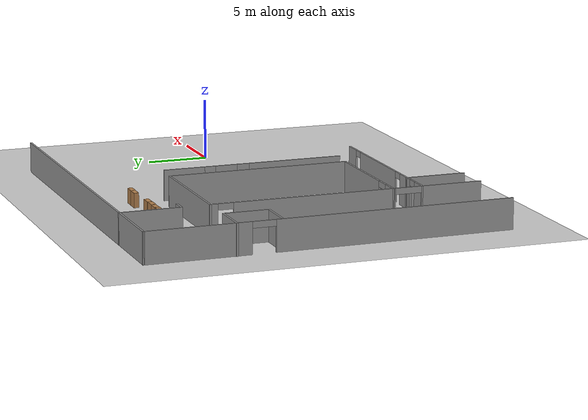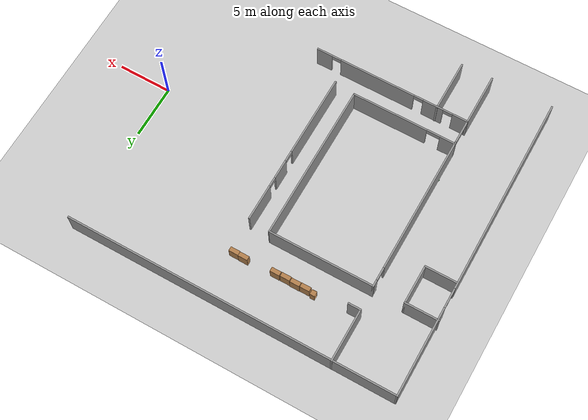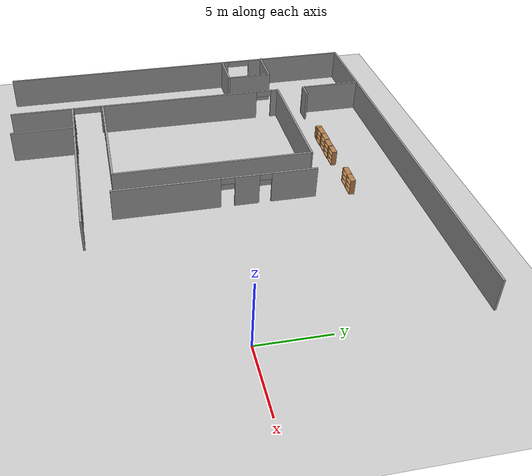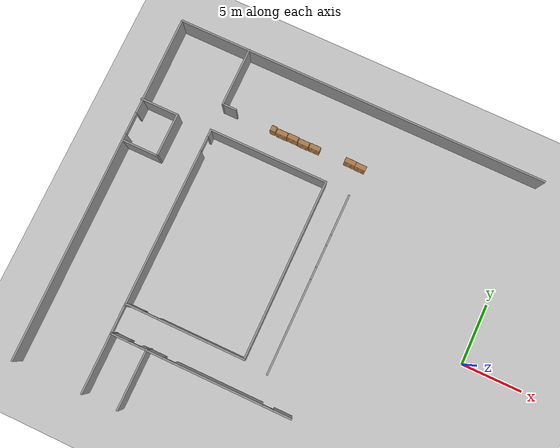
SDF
<sdf version="1.4">
 <world name="default">
  <model name="ground_plane">
   <static>1</static>
   <link name="link">
    <collision name="collision">
     <geometry><plane><normal>0 0 1</normal><size>100 100</size></plane></geometry>
    </collision>
    <visual name="visual">
     <cast_shadows>0</cast_shadows>
     <geometry><plane><normal>0 0 1</normal><size>100 100</size></plane></geometry>
     <material>
      <script><uri>file://media/materials/scripts/gazebo.material</uri><name>Gazebo/Grey</name></script>
     </material>
    </visual>
    <velocity_decay><linear>0</linear><angular>0</angular></velocity_decay>
   </link>
  </model>
  <model name="Shannon">
   <pose>-0.0406 0.68299 0 0 -0 0</pose>
   <link name="Wall_108">
    <collision name="Wall_108_Collision">
     <geometry><box><size>3.75 0.15 2.5</size></box></geometry>
     <pose>0 0 1.25 0 -0 0</pose>
    </collision>
    <visual name="Wall_108_Visual">
     <pose>0 0 1.25 0 -0 0</pose>
     <geometry><box><size>3.75 0.15 2.5</size></box></geometry>
     <material>
      <script><uri>file://media/materials/scripts/gazebo.material</uri><name>Gazebo/Grey</name></script>
      <ambient>1 1 1 1</ambient>
     </material>
    </visual>
    <pose>-28.0998 5.68065 0 0 -0 -1.5708</pose>
    <velocity_decay><linear>0</linear><angular>0</angular></velocity_decay>
   </link>
   <link name="Wall_109">
    <collision name="Wall_109_Collision">
     <geometry><box><size>3 0.15 2.5</size></box></geometry>
     <pose>0 0 1.25 0 -0 0</pose>
    </collision>
    <visual name="Wall_109_Visual">
     <pose>0 0 1.25 0 -0 0</pose>
     <geometry><box><size>3 0.15 2.5</size></box></geometry>
     <material>
      <script><uri>file://media/materials/scripts/gazebo.material</uri><name>Gazebo/Grey</name></script>
      <ambient>1 1 1 1</ambient>
     </material>
    </visual>
    <pose>-29.5248 3.88065 0 0 -0 3.14159</pose>
    <velocity_decay><linear>0</linear><angular>0</angular></velocity_decay>
   </link>
   <link name="Wall_115">
    <pose>-25.1881 -8.57974 0 0 -0 1.57264</pose>
    <visual name="Wall_115_Visual_0">
     <pose>-1.20863 0 1.25 0 -0 0</pose>
     <geometry><box><size>0.183947 0.15 2.5</size></box></geometry>
     <material>
      <script><uri>file://media/materials/scripts/gazebo.material</uri><name>Gazebo/Grey</name></script>
      <ambient>1 1 1 1</ambient>
     </material>
    </visual>
    <collision name="Wall_115_Collision_0">
     <geometry><box><size>0.183947 0.15 2.5</size></box></geometry>
     <pose>-1.20863 0 1.25 0 -0 0</pose>
    </collision>
    <visual name="Wall_115_Visual_1">
     <pose>1.16989 0 1.25 0 -0 0</pose>
     <geometry><box><size>0.261435 0.15 2.5</size></box></geometry>
     <material>
      <script><uri>file://media/materials/scripts/gazebo.material</uri><name>Gazebo/Grey</name></script>
      <ambient>1 1 1 1</ambient>
     </material>
    </visual>
    <collision name="Wall_115_Collision_1">
     <geometry><box><size>0.261435 0.15 2.5</size></box></geometry>
     <pose>1.16989 0 1.25 0 -0 0</pose>
    </collision>
    <visual name="Wall_115_Visual_2">
     <pose>-0.038744 0 2.25 0 -0 0</pose>
     <geometry><box><size>2.15582 0.15 0.5</size></box></geometry>
     <material>
      <script><uri>file://media/materials/scripts/gazebo.material</uri><name>Gazebo/Grey</name></script>
      <ambient>1 1 1 1</ambient>
     </material>
    </visual>
    <collision name="Wall_115_Collision_2">
     <geometry><box><size>2.15582 0.15 0.5</size></box></geometry>
     <pose>-0.038744 0 2.25 0 -0 0</pose>
    </collision>
    <velocity_decay><linear>0</linear><angular>0</angular></velocity_decay>
   </link>
   <link name="Wall_118">
    <collision name="Wall_118_Collision">
     <geometry><box><size>31.25 0.15 2.5</size></box></geometry>
     <pose>0 0 1.25 0 -0 0</pose>
    </collision>
    <visual name="Wall_118_Visual">
     <pose>0 0 1.25 0 -0 0</pose>
     <geometry><box><size>31.25 0.15 2.5</size></box></geometry>
     <material>
      <script><uri>file://media/materials/scripts/gazebo.material</uri><name>Gazebo/Grey</name></script>
      <ambient>1 1 1 1</ambient>
     </material>
    </visual>
    <pose>-15.6004 14.61 0 0 -0 0</pose>
    <velocity_decay><linear>0</linear><angular>0</angular></velocity_decay>
   </link>
   <link name="Wall_14">
    <pose>-31.0675 -0.031809 0 0 -0 1.57646</pose>
    <visual name="Wall_14_Visual_0">
     <pose>-5.13073 0 1.25 0 -0 0</pose>
     <geometry><box><size>19.1731 0.15 2.5</size></box></geometry>
     <material>
      <script><uri>file://media/materials/scripts/gazebo.material</uri><name>Gazebo/Grey</name></script>
      <ambient>1 1 1 1</ambient>
     </material>
    </visual>
    <collision name="Wall_14_Collision_0">
     <geometry><box><size>19.1731 0.15 2.5</size></box></geometry>
     <pose>-5.13073 0 1.25 0 -0 0</pose>
    </collision>
    <visual name="Wall_14_Visual_1">
     <pose>10.5202 0 1.25 0 -0 0</pose>
     <geometry><box><size>8.3942 0.15 2.5</size></box></geometry>
     <material>
      <script><uri>file://media/materials/scripts/gazebo.material</uri><name>Gazebo/Grey</name></script>
      <ambient>1 1 1 1</ambient>
     </material>
    </visual>
    <collision name="Wall_14_Collision_1">
     <geometry><box><size>8.3942 0.15 2.5</size></box></geometry>
     <pose>10.5202 0 1.25 0 -0 0</pose>
    </collision>
    <visual name="Wall_14_Visual_2">
     <pose>5.38944 0 2.25 0 -0 0</pose>
     <geometry><box><size>1.86726 0.15 0.5</size></box></geometry>
     <material>
      <script><uri>file://media/materials/scripts/gazebo.material</uri><name>Gazebo/Grey</name></script>
      <ambient>1 1 1 1</ambient>
     </material>
    </visual>
    <collision name="Wall_14_Collision_2">
     <geometry><box><size>1.86726 0.15 0.5</size></box></geometry>
     <pose>5.38944 0 2.25 0 -0 0</pose>
    </collision>
    <velocity_decay><linear>0</linear><angular>0</angular></velocity_decay>
   </link>
   <link name="Wall_16">
    <collision name="Wall_16_Collision">
     <geometry><box><size>10 0.15 2.5</size></box></geometry>
     <pose>0 0 1.25 0 -0 0</pose>
    </collision>
    <visual name="Wall_16_Visual">
     <pose>0 0 1.25 0 -0 0</pose>
     <geometry><box><size>10 0.15 2.5</size></box></geometry>
     <material>
      <script><uri>file://media/materials/scripts/gazebo.material</uri><name>Gazebo/Grey</name></script>
      <ambient>1 1 1 1</ambient>
     </material>
    </visual>
    <pose>-20.2786 7.49586 0 0 -0 0</pose>
    <velocity_decay><linear>0</linear><angular>0</angular></velocity_decay>
   </link>
   <link name="Wall_17">
    <collision name="Wall_17_Collision">
     <geometry><box><size>15 0.15 2.5</size></box></geometry>
     <pose>0 0 1.25 0 -0 0</pose>
    </collision>
    <visual name="Wall_17_Visual">
     <pose>0 0 1.25 0 -0 0</pose>
     <geometry><box><size>15 0.15 2.5</size></box></geometry>
     <material>
      <script><uri>file://media/materials/scripts/gazebo.material</uri><name>Gazebo/Grey</name></script>
      <ambient>1 1 1 1</ambient>
     </material>
    </visual>
    <pose>-15.3403 0.07086 0 0 -0 -1.569</pose>
    <velocity_decay><linear>0</linear><angular>0</angular></velocity_decay>
   </link>
   <link name="Wall_18">
    <pose>-20.2653 -7.35414 0 0 -0 3.14159</pose>
    <visual name="Wall_18_Visual_0">
     <pose>-1.3866 0 1.25 0 -0 0</pose>
     <geometry><box><size>7.2268 0.15 2.5</size></box></geometry>
     <material>
      <script><uri>file://media/materials/scripts/gazebo.material</uri><name>Gazebo/Grey</name></script>
      <ambient>1 1 1 1</ambient>
     </material>
    </visual>
    <collision name="Wall_18_Collision_0">
     <geometry><box><size>7.2268 0.15 2.5</size></box></geometry>
     <pose>-1.3866 0 1.25 0 -0 0</pose>
    </collision>
    <visual name="Wall_18_Visual_1">
     <pose>4.24845 0 1.25 0 -0 0</pose>
     <geometry><box><size>1.50311 0.15 2.5</size></box></geometry>
     <material>
      <script><uri>file://media/materials/scripts/gazebo.material</uri><name>Gazebo/Grey</name></script>
      <ambient>1 1 1 1</ambient>
     </material>
    </visual>
    <collision name="Wall_18_Collision_1">
     <geometry><box><size>1.50311 0.15 2.5</size></box></geometry>
     <pose>4.24845 0 1.25 0 -0 0</pose>
    </collision>
    <visual name="Wall_18_Visual_2">
     <pose>2.86185 0 2.25 0 -0 0</pose>
     <geometry><box><size>1.27009 0.15 0.5</size></box></geometry>
     <material>
      <script><uri>file://media/materials/scripts/gazebo.material</uri><name>Gazebo/Grey</name></script>
      <ambient>1 1 1 1</ambient>
     </material>
    </visual>
    <collision name="Wall_18_Collision_2">
     <geometry><box><size>1.27009 0.15 0.5</size></box></geometry>
     <pose>2.86185 0 2.25 0 -0 0</pose>
    </collision>
    <velocity_decay><linear>0</linear><angular>0</angular></velocity_decay>
   </link>
   <link name="Wall_20">
    <pose>-25.1903 0.07086 0 0 -0 1.5708</pose>
    <visual name="Wall_20_Visual_0">
     <pose>-0.95824 0 1.25 0 -0 0</pose>
     <geometry><box><size>13.0835 0.15 2.5</size></box></geometry>
     <material>
      <script><uri>file://media/materials/scripts/gazebo.material</uri><name>Gazebo/Grey</name></script>
      <ambient>1 1 1 1</ambient>
     </material>
    </visual>
    <collision name="Wall_20_Collision_0">
     <geometry><box><size>13.0835 0.15 2.5</size></box></geometry>
     <pose>-0.95824 0 1.25 0 -0 0</pose>
    </collision>
    <visual name="Wall_20_Visual_1">
     <pose>7.16524 0 1.25 0 -0 0</pose>
     <geometry><box><size>0.669521 0.15 2.5</size></box></geometry>
     <material>
      <script><uri>file://media/materials/scripts/gazebo.material</uri><name>Gazebo/Grey</name></script>
      <ambient>1 1 1 1</ambient>
     </material>
    </visual>
    <collision name="Wall_20_Collision_1">
     <geometry><box><size>0.669521 0.15 2.5</size></box></geometry>
     <pose>7.16524 0 1.25 0 -0 0</pose>
    </collision>
    <visual name="Wall_20_Visual_2">
     <pose>6.207 0 2.25 0 -0 0</pose>
     <geometry><box><size>1.24696 0.15 0.5</size></box></geometry>
     <material>
      <script><uri>file://media/materials/scripts/gazebo.material</uri><name>Gazebo/Grey</name></script>
      <ambient>1 1 1 1</ambient>
     </material>
    </visual>
    <collision name="Wall_20_Collision_2">
     <geometry><box><size>1.24696 0.15 0.5</size></box></geometry>
     <pose>6.207 0 2.25 0 -0 0</pose>
    </collision>
    <velocity_decay><linear>0</linear><angular>0</angular></velocity_decay>
   </link>
   <link name="Wall_22">
    <collision name="Wall_22_Collision">
     <geometry><box><size>5 0.15 2.5</size></box></geometry>
     <pose>0 0 1.25 0 -0 0</pose>
    </collision>
    <visual name="Wall_22_Visual">
     <pose>0 0 1.25 0 -0 0</pose>
     <geometry><box><size>5 0.15 2.5</size></box></geometry>
     <material>
      <script><uri>file://media/materials/scripts/gazebo.material</uri><name>Gazebo/Grey</name></script>
      <ambient>1 1 1 1</ambient>
     </material>
    </visual>
    <pose>-25.1858 -12.2303 0 0 -0 1.5708</pose>
    <velocity_decay><linear>0</linear><angular>0</angular></velocity_decay>
   </link>
   <link name="Wall_23">
    <pose>-17.7608 -9.80534 0 0 -0 0</pose>
    <visual name="Wall_23_Visual_0">
     <pose>-6.73914 0 1.25 0 -0 0</pose>
     <geometry><box><size>1.52171 0.15 2.5</size></box></geometry>
     <material>
      <script><uri>file://media/materials/scripts/gazebo.material</uri><name>Gazebo/Grey</name></script>
      <ambient>1 1 1 1</ambient>
     </material>
    </visual>
    <collision name="Wall_23_Collision_0">
     <geometry><box><size>1.52171 0.15 2.5</size></box></geometry>
     <pose>-6.73914 0 1.25 0 -0 0</pose>
    </collision>
    <visual name="Wall_23_Visual_1">
     <pose>-4.09419 0 1.25 0 -0 0</pose>
     <geometry><box><size>1.96819 0.15 2.5</size></box></geometry>
     <material>
      <script><uri>file://media/materials/scripts/gazebo.material</uri><name>Gazebo/Grey</name></script>
      <ambient>1 1 1 1</ambient>
     </material>
    </visual>
    <collision name="Wall_23_Collision_1">
     <geometry><box><size>1.96819 0.15 2.5</size></box></geometry>
     <pose>-4.09419 0 1.25 0 -0 0</pose>
    </collision>
    <visual name="Wall_23_Visual_2">
     <pose>1.43402 0 1.25 0 -0 0</pose>
     <geometry><box><size>7.28824 0.15 2.5</size></box></geometry>
     <material>
      <script><uri>file://media/materials/scripts/gazebo.material</uri><name>Gazebo/Grey</name></script>
      <ambient>1 1 1 1</ambient>
     </material>
    </visual>
    <collision name="Wall_23_Collision_2">
     <geometry><box><size>7.28824 0.15 2.5</size></box></geometry>
     <pose>1.43402 0 1.25 0 -0 0</pose>
    </collision>
    <visual name="Wall_23_Visual_3">
     <pose>6.73907 0 1.25 0 -0 0</pose>
     <geometry><box><size>1.52186 0.15 2.5</size></box></geometry>
     <material>
      <script><uri>file://media/materials/scripts/gazebo.material</uri><name>Gazebo/Grey</name></script>
      <ambient>1 1 1 1</ambient>
     </material>
    </visual>
    <collision name="Wall_23_Collision_3">
     <geometry><box><size>1.52186 0.15 2.5</size></box></geometry>
     <pose>6.73907 0 1.25 0 -0 0</pose>
    </collision>
    <visual name="Wall_23_Visual_4">
     <pose>-5.52829 0 2.25 0 -0 0</pose>
     <geometry><box><size>0.9 0.15 0.5</size></box></geometry>
     <material>
      <script><uri>file://media/materials/scripts/gazebo.material</uri><name>Gazebo/Grey</name></script>
      <ambient>1 1 1 1</ambient>
     </material>
    </visual>
    <collision name="Wall_23_Collision_4">
     <geometry><box><size>0.9 0.15 0.5</size></box></geometry>
     <pose>-5.52829 0 2.25 0 -0 0</pose>
    </collision>
    <visual name="Wall_23_Visual_5">
     <pose>-2.6601 0 2.25 0 -0 0</pose>
     <geometry><box><size>0.9 0.15 0.5</size></box></geometry>
     <material>
      <script><uri>file://media/materials/scripts/gazebo.material</uri><name>Gazebo/Grey</name></script>
      <ambient>1 1 1 1</ambient>
     </material>
    </visual>
    <collision name="Wall_23_Collision_5">
     <geometry><box><size>0.9 0.15 0.5</size></box></geometry>
     <pose>-2.6601 0 2.25 0 -0 0</pose>
    </collision>
    <visual name="Wall_23_Visual_6">
     <pose>5.52814 0 2.25 0 -0 0</pose>
     <geometry><box><size>0.9 0.15 0.5</size></box></geometry>
     <material>
      <script><uri>file://media/materials/scripts/gazebo.material</uri><name>Gazebo/Grey</name></script>
      <ambient>1 1 1 1</ambient>
     </material>
    </visual>
    <collision name="Wall_23_Collision_6">
     <geometry><box><size>0.9 0.15 0.5</size></box></geometry>
     <pose>5.52814 0 2.25 0 -0 0</pose>
    </collision>
    <velocity_decay><linear>0</linear><angular>0</angular></velocity_decay>
   </link>
   <link name="Wall_32">
    <collision name="Wall_32_Collision">
     <geometry><box><size>5 0.15 2.5</size></box></geometry>
     <pose>0 0 1.25 0 -0 0</pose>
    </collision>
    <visual name="Wall_32_Visual">
     <pose>0 0 1.25 0 -0 0</pose>
     <geometry><box><size>5 0.15 2.5</size></box></geometry>
     <material>
      <script><uri>file://media/materials/scripts/gazebo.material</uri><name>Gazebo/Grey</name></script>
      <ambient>1 1 1 1</ambient>
     </material>
    </visual>
    <pose>-22.2482 -12.1767 0 0 -0 -1.5708</pose>
    <velocity_decay><linear>0</linear><angular>0</angular></velocity_decay>
   </link>
   <link name="Wall_45">
    <pose>-13.2967 -0.175656 0 0 -0 -1.5708</pose>
    <visual name="Wall_45_Visual_0">
     <pose>-5.79079 0 1.25 0 -0 0</pose>
     <geometry><box><size>3.41842 0.15 2.5</size></box></geometry>
     <material>
      <script><uri>file://media/materials/scripts/gazebo.material</uri><name>Gazebo/Grey</name></script>
      <ambient>1 1 1 1</ambient>
     </material>
    </visual>
    <collision name="Wall_45_Collision_0">
     <geometry><box><size>3.41842 0.15 2.5</size></box></geometry>
     <pose>-5.79079 0 1.25 0 -0 0</pose>
    </collision>
    <visual name="Wall_45_Visual_1">
     <pose>-2.27266 0 1.25 0 -0 0</pose>
     <geometry><box><size>1.81785 0.15 2.5</size></box></geometry>
     <material>
      <script><uri>file://media/materials/scripts/gazebo.material</uri><name>Gazebo/Grey</name></script>
      <ambient>1 1 1 1</ambient>
     </material>
    </visual>
    <collision name="Wall_45_Collision_1">
     <geometry><box><size>1.81785 0.15 2.5</size></box></geometry>
     <pose>-2.27266 0 1.25 0 -0 0</pose>
    </collision>
    <visual name="Wall_45_Visual_2">
     <pose>3.57596 0 1.25 0 -0 0</pose>
     <geometry><box><size>7.84808 0.15 2.5</size></box></geometry>
     <material>
      <script><uri>file://media/materials/scripts/gazebo.material</uri><name>Gazebo/Grey</name></script>
      <ambient>1 1 1 1</ambient>
     </material>
    </visual>
    <collision name="Wall_45_Collision_2">
     <geometry><box><size>7.84808 0.15 2.5</size></box></geometry>
     <pose>3.57596 0 1.25 0 -0 0</pose>
    </collision>
    <visual name="Wall_45_Visual_3">
     <pose>-3.63158 0 2.25 0 -0 0</pose>
     <geometry><box><size>0.9 0.15 0.5</size></box></geometry>
     <material>
      <script><uri>file://media/materials/scripts/gazebo.material</uri><name>Gazebo/Grey</name></script>
      <ambient>1 1 1 1</ambient>
     </material>
    </visual>
    <collision name="Wall_45_Collision_3">
     <geometry><box><size>0.9 0.15 0.5</size></box></geometry>
     <pose>-3.63158 0 2.25 0 -0 0</pose>
    </collision>
    <visual name="Wall_45_Visual_4">
     <pose>-0.855907 0 2.25 0 -0 0</pose>
     <geometry><box><size>1.01565 0.15 0.5</size></box></geometry>
     <material>
      <script><uri>file://media/materials/scripts/gazebo.material</uri><name>Gazebo/Grey</name></script>
      <ambient>1 1 1 1</ambient>
     </material>
    </visual>
    <collision name="Wall_45_Collision_4">
     <geometry><box><size>1.01565 0.15 0.5</size></box></geometry>
     <pose>-0.855907 0 2.25 0 -0 0</pose>
    </collision>
    <velocity_decay><linear>0</linear><angular>0</angular></velocity_decay>
   </link>
   <link name="Wall_73">
    <collision name="Wall_73_Collision">
     <geometry><box><size>3.25 0.15 2.5</size></box></geometry>
     <pose>0 0 1.25 0 -0 0</pose>
    </collision>
    <visual name="Wall_73_Visual">
     <pose>0 0 1.25 0 -0 0</pose>
     <geometry><box><size>3.25 0.15 2.5</size></box></geometry>
     <material>
      <script><uri>file://media/materials/scripts/gazebo.material</uri><name>Gazebo/Grey</name></script>
      <ambient>1 1 1 1</ambient>
     </material>
    </visual>
    <pose>-29.6498 7.48065 0 0 -0 0</pose>
    <velocity_decay><linear>0</linear><angular>0</angular></velocity_decay>
   </link>
   <link name="Wall_75">
    <collision name="Wall_75_Collision">
     <geometry><box><size>5 0.15 2.5</size></box></geometry>
     <pose>0 0 1.25 0 -0 0</pose>
    </collision>
    <visual name="Wall_75_Visual">
     <pose>0 0 1.25 0 -0 0</pose>
     <geometry><box><size>5 0.15 2.5</size></box></geometry>
     <material>
      <script><uri>file://media/materials/scripts/gazebo.material</uri><name>Gazebo/Grey</name></script>
      <ambient>1 1 1 1</ambient>
     </material>
    </visual>
    <pose>-25.2552 12.203 0 0 -0 -1.5708</pose>
    <velocity_decay><linear>0</linear><angular>0</angular></velocity_decay>
   </link>
   <link name="Wall_76">
    <collision name="Wall_76_Collision">
     <geometry><box><size>1.25 0.15 2.5</size></box></geometry>
     <pose>0 0 1.25 0 -0 0</pose>
    </collision>
    <visual name="Wall_76_Visual">
     <pose>0 0 1.25 0 -0 0</pose>
     <geometry><box><size>1.25 0.15 2.5</size></box></geometry>
     <material>
      <script><uri>file://media/materials/scripts/gazebo.material</uri><name>Gazebo/Grey</name></script>
      <ambient>1 1 1 1</ambient>
     </material>
    </visual>
    <pose>-24.7052 9.77801 0 0 -0 0</pose>
    <velocity_decay><linear>0</linear><angular>0</angular></velocity_decay>
   </link>
   <static>1</static>
  </model>
  <model name="cabinet">
   <static>1</static>
   <link name="cabinet_bottom_plate">
    <inertial>
     <pose>0 0 -1 0 -0 0</pose>
     <inertia><ixx>2.05</ixx><ixy>0</ixy><ixz>0</ixz><iyy>2.05</iyy><iyz>0</iyz><izz>2.05</izz></inertia>
     <mass>25</mass>
    </inertial>
    <collision name="cabinet_bottom_plate_geom">
     <pose>0 0 0.01 0 -0 0</pose>
     <geometry><box><size>0.45 0.45 0.02</size></box></geometry>
    </collision>
    <visual name="cabinet_bottom_plate_geom_visual">
     <pose>0 0 0.01 0 -0 0</pose>
     <geometry><box><size>0.45 0.45 0.02</size></box></geometry>
     <material>
      <script><uri>file://media/materials/scripts/gazebo.material</uri><name>Gazebo/Wood</name></script>
     </material>
    </visual>
    <collision name="cabinet_bottom_plate_geom_cabinet_back_plate">
     <pose>0.235 0 0.51 0 -0 0</pose>
     <geometry><box><size>0.02 0.45 1.02</size></box></geometry>
    </collision>
    <visual name="cabinet_bottom_plate_geom_cabinet_back_plate_visual">
     <pose>0.235 0 0.51 0 -0 0</pose>
     <geometry><box><size>0.02 0.45 1.02</size></box></geometry>
     <material>
      <script><uri>file://media/materials/scripts/gazebo.material</uri><name>Gazebo/Wood</name></script>
     </material>
    </visual>
    <collision name="cabinet_bottom_plate_geom_cabinet_left_plate">
     <pose>0 0.235 0.51 0 -0 0</pose>
     <geometry><box><size>0.45 0.02 1.02</size></box></geometry>
    </collision>
    <visual name="cabinet_bottom_plate_geom_cabinet_left_plate_visual">
     <pose>0 0.235 0.51 0 -0 0</pose>
     <geometry><box><size>0.45 0.02 1.02</size></box></geometry>
     <material>
      <script><uri>file://media/materials/scripts/gazebo.material</uri><name>Gazebo/Wood</name></script>
     </material>
    </visual>
    <collision name="cabinet_bottom_plate_geom_cabinet_middle_plate">
     <pose>0 0 0.51 0 -0 0</pose>
     <geometry><box><size>0.45 0.45 0.02</size></box></geometry>
    </collision>
    <visual name="cabinet_bottom_plate_geom_cabinet_middle_plate_visual">
     <pose>0 0 0.51 0 -0 0</pose>
     <geometry><box><size>0.45 0.45 0.02</size></box></geometry>
     <material>
      <script><uri>file://media/materials/scripts/gazebo.material</uri><name>Gazebo/Wood</name></script>
     </material>
    </visual>
    <collision name="cabinet_bottom_plate_geom_cabinet_right_plate">
     <pose>0 -0.235 0.51 0 -0 0</pose>
     <geometry><box><size>0.45 0.02 1.02</size></box></geometry>
    </collision>
    <visual name="cabinet_bottom_plate_geom_cabinet_right_plate_visual">
     <pose>0 -0.235 0.51 0 -0 0</pose>
     <geometry><box><size>0.45 0.02 1.02</size></box></geometry>
     <material>
      <script><uri>file://media/materials/scripts/gazebo.material</uri><name>Gazebo/Wood</name></script>
     </material>
    </visual>
    <collision name="cabinet_bottom_plate_geom_cabinet_top_plate">
     <pose>0 0 1.01 0 -0 0</pose>
     <geometry><box><size>0.45 0.45 0.02</size></box></geometry>
    </collision>
    <visual name="cabinet_bottom_plate_geom_cabinet_top_plate_visual">
     <pose>0 0 1.01 0 -0 0</pose>
     <geometry><box><size>0.45 0.45 0.02</size></box></geometry>
     <material>
      <script><uri>file://media/materials/scripts/gazebo.material</uri><name>Gazebo/Wood</name></script>
     </material>
    </visual>
    <velocity_decay><linear>0</linear><angular>0</angular></velocity_decay>
   </link>
   <pose>-21.0183 10.6635 0 0 -0 0</pose>
  </model>
  <model name="bookshelf">
   <static>1</static>
   <link name="link">
    <inertial><mass>1</mass></inertial>
    <collision name="back">
     <pose>0 0.005 0.6 0 -0 0</pose>
     <geometry><box><size>0.9 0.01 1.2</size></box></geometry>
    </collision>
    <visual name="visual1">
     <pose>0 0.005 0.6 0 -0 0</pose>
     <geometry><box><size>0.9 0.01 1.2</size></box></geometry>
     <material>
      <script><uri>file://media/materials/scripts/gazebo.material</uri><name>Gazebo/Wood</name></script>
     </material>
    </visual>
    <collision name="left_side">
     <pose>0.45 -0.195 0.6 0 -0 0</pose>
     <geometry><box><size>0.02 0.4 1.2</size></box></geometry>
    </collision>
    <visual name="visual2">
     <pose>0.45 -0.195 0.6 0 -0 0</pose>
     <geometry><box><size>0.02 0.4 1.2</size></box></geometry>
     <material>
      <script><uri>file://media/materials/scripts/gazebo.material</uri><name>Gazebo/Wood</name></script>
     </material>
    </visual>
    <collision name="right_side">
     <pose>-0.45 -0.195 0.6 0 -0 0</pose>
     <geometry><box><size>0.02 0.4 1.2</size></box></geometry>
    </collision>
    <visual name="visual3">
     <pose>-0.45 -0.195 0.6 0 -0 0</pose>
     <geometry><box><size>0.02 0.4 1.2</size></box></geometry>
     <material>
      <script><uri>file://media/materials/scripts/gazebo.material</uri><name>Gazebo/Wood</name></script>
     </material>
    </visual>
    <collision name="bottom">
     <pose>0 -0.195 0.03 0 -0 0</pose>
     <geometry><box><size>0.88 0.4 0.06</size></box></geometry>
    </collision>
    <visual name="visual4">
     <pose>0 -0.195 0.03 0 -0 0</pose>
     <geometry><box><size>0.88 0.4 0.06</size></box></geometry>
     <material>
      <script><uri>file://media/materials/scripts/gazebo.material</uri><name>Gazebo/Wood</name></script>
     </material>
    </visual>
    <collision name="top">
     <pose>0 -0.195 1.19 0 -0 0</pose>
     <geometry><box><size>0.88 0.4 0.02</size></box></geometry>
    </collision>
    <visual name="visual5">
     <pose>0 -0.195 1.19 0 -0 0</pose>
     <geometry><box><size>0.88 0.4 0.02</size></box></geometry>
     <material>
      <script><uri>file://media/materials/scripts/gazebo.material</uri><name>Gazebo/Wood</name></script>
     </material>
    </visual>
    <collision name="low_shelf">
     <pose>0 -0.195 0.43 0 -0 0</pose>
     <geometry><box><size>0.88 0.4 0.02</size></box></geometry>
    </collision>
    <visual name="visual6">
     <pose>0 -0.195 0.43 0 -0 0</pose>
     <geometry><box><size>0.88 0.4 0.02</size></box></geometry>
     <material>
      <script><uri>file://media/materials/scripts/gazebo.material</uri><name>Gazebo/Wood</name></script>
     </material>
    </visual>
    <collision name="high_shelf">
     <pose>0 -0.195 0.8 0 -0 0</pose>
     <geometry><box><size>0.88 0.4 0.02</size></box></geometry>
    </collision>
    <visual name="visual7">
     <pose>0 -0.195 0.8 0 -0 0</pose>
     <geometry><box><size>0.88 0.4 0.02</size></box></geometry>
     <material>
      <script><uri>file://media/materials/scripts/gazebo.material</uri><name>Gazebo/Wood</name></script>
     </material>
    </visual>
    <velocity_decay><linear>0</linear><angular>0</angular></velocity_decay>
   </link>
   <pose>-20.2295 10.7893 0 0 -0 0</pose>
  </model>
  <model name="bookshelf_0">
   <static>1</static>
   <link name="link">
    <inertial><mass>1</mass></inertial>
    <collision name="back">
     <pose>0 0.005 0.6 0 -0 0</pose>
     <geometry><box><size>0.9 0.01 1.2</size></box></geometry>
    </collision>
    <visual name="visual1">
     <pose>0 0.005 0.6 0 -0 0</pose>
     <geometry><box><size>0.9 0.01 1.2</size></box></geometry>
     <material>
      <script><uri>file://media/materials/scripts/gazebo.material</uri><name>Gazebo/Wood</name></script>
     </material>
    </visual>
    <collision name="left_side">
     <pose>0.45 -0.195 0.6 0 -0 0</pose>
     <geometry><box><size>0.02 0.4 1.2</size></box></geometry>
    </collision>
    <visual name="visual2">
     <pose>0.45 -0.195 0.6 0 -0 0</pose>
     <geometry><box><size>0.02 0.4 1.2</size></box></geometry>
     <material>
      <script><uri>file://media/materials/scripts/gazebo.material</uri><name>Gazebo/Wood</name></script>
     </material>
    </visual>
    <collision name="right_side">
     <pose>-0.45 -0.195 0.6 0 -0 0</pose>
     <geometry><box><size>0.02 0.4 1.2</size></box></geometry>
    </collision>
    <visual name="visual3">
     <pose>-0.45 -0.195 0.6 0 -0 0</pose>
     <geometry><box><size>0.02 0.4 1.2</size></box></geometry>
     <material>
      <script><uri>file://media/materials/scripts/gazebo.material</uri><name>Gazebo/Wood</name></script>
     </material>
    </visual>
    <collision name="bottom">
     <pose>0 -0.195 0.03 0 -0 0</pose>
     <geometry><box><size>0.88 0.4 0.06</size></box></geometry>
    </collision>
    <visual name="visual4">
     <pose>0 -0.195 0.03 0 -0 0</pose>
     <geometry><box><size>0.88 0.4 0.06</size></box></geometry>
     <material>
      <script><uri>file://media/materials/scripts/gazebo.material</uri><name>Gazebo/Wood</name></script>
     </material>
    </visual>
    <collision name="top">
     <pose>0 -0.195 1.19 0 -0 0</pose>
     <geometry><box><size>0.88 0.4 0.02</size></box></geometry>
    </collision>
    <visual name="visual5">
     <pose>0 -0.195 1.19 0 -0 0</pose>
     <geometry><box><size>0.88 0.4 0.02</size></box></geometry>
     <material>
      <script><uri>file://media/materials/scripts/gazebo.material</uri><name>Gazebo/Wood</name></script>
     </material>
    </visual>
    <collision name="low_shelf">
     <pose>0 -0.195 0.43 0 -0 0</pose>
     <geometry><box><size>0.88 0.4 0.02</size></box></geometry>
    </collision>
    <visual name="visual6">
     <pose>0 -0.195 0.43 0 -0 0</pose>
     <geometry><box><size>0.88 0.4 0.02</size></box></geometry>
     <material>
      <script><uri>file://media/materials/scripts/gazebo.material</uri><name>Gazebo/Wood</name></script>
     </material>
    </visual>
    <collision name="high_shelf">
     <pose>0 -0.195 0.8 0 -0 0</pose>
     <geometry><box><size>0.88 0.4 0.02</size></box></geometry>
    </collision>
    <visual name="visual7">
     <pose>0 -0.195 0.8 0 -0 0</pose>
     <geometry><box><size>0.88 0.4 0.02</size></box></geometry>
     <material>
      <script><uri>file://media/materials/scripts/gazebo.material</uri><name>Gazebo/Wood</name></script>
     </material>
    </visual>
    <velocity_decay><linear>0</linear><angular>0</angular></velocity_decay>
   </link>
   <pose>-19.2881 10.8134 0 0 -0 0</pose>
  </model>
  <model name="bookshelf_1">
   <static>1</static>
   <link name="link">
    <inertial><mass>1</mass></inertial>
    <collision name="back">
     <pose>0 0.005 0.6 0 -0 0</pose>
     <geometry><box><size>0.9 0.01 1.2</size></box></geometry>
    </collision>
    <visual name="visual1">
     <pose>0 0.005 0.6 0 -0 0</pose>
     <geometry><box><size>0.9 0.01 1.2</size></box></geometry>
     <material>
      <script><uri>file://media/materials/scripts/gazebo.material</uri><name>Gazebo/Wood</name></script>
     </material>
    </visual>
    <collision name="left_side">
     <pose>0.45 -0.195 0.6 0 -0 0</pose>
     <geometry><box><size>0.02 0.4 1.2</size></box></geometry>
    </collision>
    <visual name="visual2">
     <pose>0.45 -0.195 0.6 0 -0 0</pose>
     <geometry><box><size>0.02 0.4 1.2</size></box></geometry>
     <material>
      <script><uri>file://media/materials/scripts/gazebo.material</uri><name>Gazebo/Wood</name></script>
     </material>
    </visual>
    <collision name="right_side">
     <pose>-0.45 -0.195 0.6 0 -0 0</pose>
     <geometry><box><size>0.02 0.4 1.2</size></box></geometry>
    </collision>
    <visual name="visual3">
     <pose>-0.45 -0.195 0.6 0 -0 0</pose>
     <geometry><box><size>0.02 0.4 1.2</size></box></geometry>
     <material>
      <script><uri>file://media/materials/scripts/gazebo.material</uri><name>Gazebo/Wood</name></script>
     </material>
    </visual>
    <collision name="bottom">
     <pose>0 -0.195 0.03 0 -0 0</pose>
     <geometry><box><size>0.88 0.4 0.06</size></box></geometry>
    </collision>
    <visual name="visual4">
     <pose>0 -0.195 0.03 0 -0 0</pose>
     <geometry><box><size>0.88 0.4 0.06</size></box></geometry>
     <material>
      <script><uri>file://media/materials/scripts/gazebo.material</uri><name>Gazebo/Wood</name></script>
     </material>
    </visual>
    <collision name="top">
     <pose>0 -0.195 1.19 0 -0 0</pose>
     <geometry><box><size>0.88 0.4 0.02</size></box></geometry>
    </collision>
    <visual name="visual5">
     <pose>0 -0.195 1.19 0 -0 0</pose>
     <geometry><box><size>0.88 0.4 0.02</size></box></geometry>
     <material>
      <script><uri>file://media/materials/scripts/gazebo.material</uri><name>Gazebo/Wood</name></script>
     </material>
    </visual>
    <collision name="low_shelf">
     <pose>0 -0.195 0.43 0 -0 0</pose>
     <geometry><box><size>0.88 0.4 0.02</size></box></geometry>
    </collision>
    <visual name="visual6">
     <pose>0 -0.195 0.43 0 -0 0</pose>
     <geometry><box><size>0.88 0.4 0.02</size></box></geometry>
     <material>
      <script><uri>file://media/materials/scripts/gazebo.material</uri><name>Gazebo/Wood</name></script>
     </material>
    </visual>
    <collision name="high_shelf">
     <pose>0 -0.195 0.8 0 -0 0</pose>
     <geometry><box><size>0.88 0.4 0.02</size></box></geometry>
    </collision>
    <visual name="visual7">
     <pose>0 -0.195 0.8 0 -0 0</pose>
     <geometry><box><size>0.88 0.4 0.02</size></box></geometry>
     <material>
      <script><uri>file://media/materials/scripts/gazebo.material</uri><name>Gazebo/Wood</name></script>
     </material>
    </visual>
    <velocity_decay><linear>0</linear><angular>0</angular></velocity_decay>
   </link>
   <pose>-18.3366 10.7808 0 0 -0 0</pose>
  </model>
  <model name="bookshelf_2">
   <static>1</static>
   <link name="link">
    <inertial><mass>1</mass></inertial>
    <collision name="back">
     <pose>0 0.005 0.6 0 -0 0</pose>
     <geometry><box><size>0.9 0.01 1.2</size></box></geometry>
    </collision>
    <visual name="visual1">
     <pose>0 0.005 0.6 0 -0 0</pose>
     <geometry><box><size>0.9 0.01 1.2</size></box></geometry>
     <material>
      <script><uri>file://media/materials/scripts/gazebo.material</uri><name>Gazebo/Wood</name></script>
     </material>
    </visual>
    <collision name="left_side">
     <pose>0.45 -0.195 0.6 0 -0 0</pose>
     <geometry><box><size>0.02 0.4 1.2</size></box></geometry>
    </collision>
    <visual name="visual2">
     <pose>0.45 -0.195 0.6 0 -0 0</pose>
     <geometry><box><size>0.02 0.4 1.2</size></box></geometry>
     <material>
      <script><uri>file://media/materials/scripts/gazebo.material</uri><name>Gazebo/Wood</name></script>
     </material>
    </visual>
    <collision name="right_side">
     <pose>-0.45 -0.195 0.6 0 -0 0</pose>
     <geometry><box><size>0.02 0.4 1.2</size></box></geometry>
    </collision>
    <visual name="visual3">
     <pose>-0.45 -0.195 0.6 0 -0 0</pose>
     <geometry><box><size>0.02 0.4 1.2</size></box></geometry>
     <material>
      <script><uri>file://media/materials/scripts/gazebo.material</uri><name>Gazebo/Wood</name></script>
     </material>
    </visual>
    <collision name="bottom">
     <pose>0 -0.195 0.03 0 -0 0</pose>
     <geometry><box><size>0.88 0.4 0.06</size></box></geometry>
    </collision>
    <visual name="visual4">
     <pose>0 -0.195 0.03 0 -0 0</pose>
     <geometry><box><size>0.88 0.4 0.06</size></box></geometry>
     <material>
      <script><uri>file://media/materials/scripts/gazebo.material</uri><name>Gazebo/Wood</name></script>
     </material>
    </visual>
    <collision name="top">
     <pose>0 -0.195 1.19 0 -0 0</pose>
     <geometry><box><size>0.88 0.4 0.02</size></box></geometry>
    </collision>
    <visual name="visual5">
     <pose>0 -0.195 1.19 0 -0 0</pose>
     <geometry><box><size>0.88 0.4 0.02</size></box></geometry>
     <material>
      <script><uri>file://media/materials/scripts/gazebo.material</uri><name>Gazebo/Wood</name></script>
     </material>
    </visual>
    <collision name="low_shelf">
     <pose>0 -0.195 0.43 0 -0 0</pose>
     <geometry><box><size>0.88 0.4 0.02</size></box></geometry>
    </collision>
    <visual name="visual6">
     <pose>0 -0.195 0.43 0 -0 0</pose>
     <geometry><box><size>0.88 0.4 0.02</size></box></geometry>
     <material>
      <script><uri>file://media/materials/scripts/gazebo.material</uri><name>Gazebo/Wood</name></script>
     </material>
    </visual>
    <collision name="high_shelf">
     <pose>0 -0.195 0.8 0 -0 0</pose>
     <geometry><box><size>0.88 0.4 0.02</size></box></geometry>
    </collision>
    <visual name="visual7">
     <pose>0 -0.195 0.8 0 -0 0</pose>
     <geometry><box><size>0.88 0.4 0.02</size></box></geometry>
     <material>
      <script><uri>file://media/materials/scripts/gazebo.material</uri><name>Gazebo/Wood</name></script>
     </material>
    </visual>
    <velocity_decay><linear>0</linear><angular>0</angular></velocity_decay>
   </link>
   <pose>-17.3752 10.8036 0 0 -0 0</pose>
  </model>
  <model name="bookshelf_3">
   <static>1</static>
   <link name="link">
    <inertial><mass>1</mass></inertial>
    <collision name="back">
     <pose>0 0.005 0.6 0 -0 0</pose>
     <geometry><box><size>0.9 0.01 1.2</size></box></geometry>
    </collision>
    <visual name="visual1">
     <pose>0 0.005 0.6 0 -0 0</pose>
     <geometry><box><size>0.9 0.01 1.2</size></box></geometry>
     <material>
      <script><uri>file://media/materials/scripts/gazebo.material</uri><name>Gazebo/Wood</name></script>
     </material>
    </visual>
    <collision name="left_side">
     <pose>0.45 -0.195 0.6 0 -0 0</pose>
     <geometry><box><size>0.02 0.4 1.2</size></box></geometry>
    </collision>
    <visual name="visual2">
     <pose>0.45 -0.195 0.6 0 -0 0</pose>
     <geometry><box><size>0.02 0.4 1.2</size></box></geometry>
     <material>
      <script><uri>file://media/materials/scripts/gazebo.material</uri><name>Gazebo/Wood</name></script>
     </material>
    </visual>
    <collision name="right_side">
     <pose>-0.45 -0.195 0.6 0 -0 0</pose>
     <geometry><box><size>0.02 0.4 1.2</size></box></geometry>
    </collision>
    <visual name="visual3">
     <pose>-0.45 -0.195 0.6 0 -0 0</pose>
     <geometry><box><size>0.02 0.4 1.2</size></box></geometry>
     <material>
      <script><uri>file://media/materials/scripts/gazebo.material</uri><name>Gazebo/Wood</name></script>
     </material>
    </visual>
    <collision name="bottom">
     <pose>0 -0.195 0.03 0 -0 0</pose>
     <geometry><box><size>0.88 0.4 0.06</size></box></geometry>
    </collision>
    <visual name="visual4">
     <pose>0 -0.195 0.03 0 -0 0</pose>
     <geometry><box><size>0.88 0.4 0.06</size></box></geometry>
     <material>
      <script><uri>file://media/materials/scripts/gazebo.material</uri><name>Gazebo/Wood</name></script>
     </material>
    </visual>
    <collision name="top">
     <pose>0 -0.195 1.19 0 -0 0</pose>
     <geometry><box><size>0.88 0.4 0.02</size></box></geometry>
    </collision>
    <visual name="visual5">
     <pose>0 -0.195 1.19 0 -0 0</pose>
     <geometry><box><size>0.88 0.4 0.02</size></box></geometry>
     <material>
      <script><uri>file://media/materials/scripts/gazebo.material</uri><name>Gazebo/Wood</name></script>
     </material>
    </visual>
    <collision name="low_shelf">
     <pose>0 -0.195 0.43 0 -0 0</pose>
     <geometry><box><size>0.88 0.4 0.02</size></box></geometry>
    </collision>
    <visual name="visual6">
     <pose>0 -0.195 0.43 0 -0 0</pose>
     <geometry><box><size>0.88 0.4 0.02</size></box></geometry>
     <material>
      <script><uri>file://media/materials/scripts/gazebo.material</uri><name>Gazebo/Wood</name></script>
     </material>
    </visual>
    <collision name="high_shelf">
     <pose>0 -0.195 0.8 0 -0 0</pose>
     <geometry><box><size>0.88 0.4 0.02</size></box></geometry>
    </collision>
    <visual name="visual7">
     <pose>0 -0.195 0.8 0 -0 0</pose>
     <geometry><box><size>0.88 0.4 0.02</size></box></geometry>
     <material>
      <script><uri>file://media/materials/scripts/gazebo.material</uri><name>Gazebo/Wood</name></script>
     </material>
    </visual>
    <velocity_decay><linear>0</linear><angular>0</angular></velocity_decay>
   </link>
   <pose>-14.3513 10.9343 0 0 -0 0</pose>
  </model>
  <model name="bookshelf_4">
   <static>1</static>
   <link name="link">
    <inertial><mass>1</mass></inertial>
    <collision name="back">
     <pose>0 0.005 0.6 0 -0 0</pose>
     <geometry><box><size>0.9 0.01 1.2</size></box></geometry>
    </collision>
    <visual name="visual1">
     <pose>0 0.005 0.6 0 -0 0</pose>
     <geometry><box><size>0.9 0.01 1.2</size></box></geometry>
     <material>
      <script><uri>file://media/materials/scripts/gazebo.material</uri><name>Gazebo/Wood</name></script>
     </material>
    </visual>
    <collision name="left_side">
     <pose>0.45 -0.195 0.6 0 -0 0</pose>
     <geometry><box><size>0.02 0.4 1.2</size></box></geometry>
    </collision>
    <visual name="visual2">
     <pose>0.45 -0.195 0.6 0 -0 0</pose>
     <geometry><box><size>0.02 0.4 1.2</size></box></geometry>
     <material>
      <script><uri>file://media/materials/scripts/gazebo.material</uri><name>Gazebo/Wood</name></script>
     </material>
    </visual>
    <collision name="right_side">
     <pose>-0.45 -0.195 0.6 0 -0 0</pose>
     <geometry><box><size>0.02 0.4 1.2</size></box></geometry>
    </collision>
    <visual name="visual3">
     <pose>-0.45 -0.195 0.6 0 -0 0</pose>
     <geometry><box><size>0.02 0.4 1.2</size></box></geometry>
     <material>
      <script><uri>file://media/materials/scripts/gazebo.material</uri><name>Gazebo/Wood</name></script>
     </material>
    </visual>
    <collision name="bottom">
     <pose>0 -0.195 0.03 0 -0 0</pose>
     <geometry><box><size>0.88 0.4 0.06</size></box></geometry>
    </collision>
    <visual name="visual4">
     <pose>0 -0.195 0.03 0 -0 0</pose>
     <geometry><box><size>0.88 0.4 0.06</size></box></geometry>
     <material>
      <script><uri>file://media/materials/scripts/gazebo.material</uri><name>Gazebo/Wood</name></script>
     </material>
    </visual>
    <collision name="top">
     <pose>0 -0.195 1.19 0 -0 0</pose>
     <geometry><box><size>0.88 0.4 0.02</size></box></geometry>
    </collision>
    <visual name="visual5">
     <pose>0 -0.195 1.19 0 -0 0</pose>
     <geometry><box><size>0.88 0.4 0.02</size></box></geometry>
     <material>
      <script><uri>file://media/materials/scripts/gazebo.material</uri><name>Gazebo/Wood</name></script>
     </material>
    </visual>
    <collision name="low_shelf">
     <pose>0 -0.195 0.43 0 -0 0</pose>
     <geometry><box><size>0.88 0.4 0.02</size></box></geometry>
    </collision>
    <visual name="visual6">
     <pose>0 -0.195 0.43 0 -0 0</pose>
     <geometry><box><size>0.88 0.4 0.02</size></box></geometry>
     <material>
      <script><uri>file://media/materials/scripts/gazebo.material</uri><name>Gazebo/Wood</name></script>
     </material>
    </visual>
    <collision name="high_shelf">
     <pose>0 -0.195 0.8 0 -0 0</pose>
     <geometry><box><size>0.88 0.4 0.02</size></box></geometry>
    </collision>
    <visual name="visual7">
     <pose>0 -0.195 0.8 0 -0 0</pose>
     <geometry><box><size>0.88 0.4 0.02</size></box></geometry>
     <material>
      <script><uri>file://media/materials/scripts/gazebo.material</uri><name>Gazebo/Wood</name></script>
     </material>
    </visual>
    <velocity_decay><linear>0</linear><angular>0</angular></velocity_decay>
   </link>
   <pose>-13.4463 10.9104 0 0 -0 0</pose>
  </model>
  <model name="unit_cylinder_clone">
   <pose>-25.3507 -4.00235 0.1 1.57078 0.035911 1.57071</pose>
   <link name="unit_cylinder::unit_cylinder::unit_cylinder::unit_cylinder::unit_cylinder::unit_cylinder::link">
    <inertial>
     <mass>1</mass>
     <inertia><ixx>0.145833</ixx><ixy>0</ixy><ixz>0</ixz><iyy>0.145833</iyy><iyz>0</iyz><izz>0.125</izz></inertia>
    </inertial>
    <collision name="collision">
     <geometry><cylinder><radius>0.1</radius><length>0.01</length></cylinder></geometry>
    </collision>
    <visual name="visual">
     <geometry><cylinder><radius>0.1</radius><length>0.01</length></cylinder></geometry>
     <material>
      <script><name>Gazebo/Green</name><uri>file://media/materials/scripts/gazebo.material</uri></script>
     </material>
    </visual>
    <velocity_decay><linear>0</linear><angular>0</angular></velocity_decay>
   </link>
   <static>0</static>
  </model>
 </world>
</sdf>
